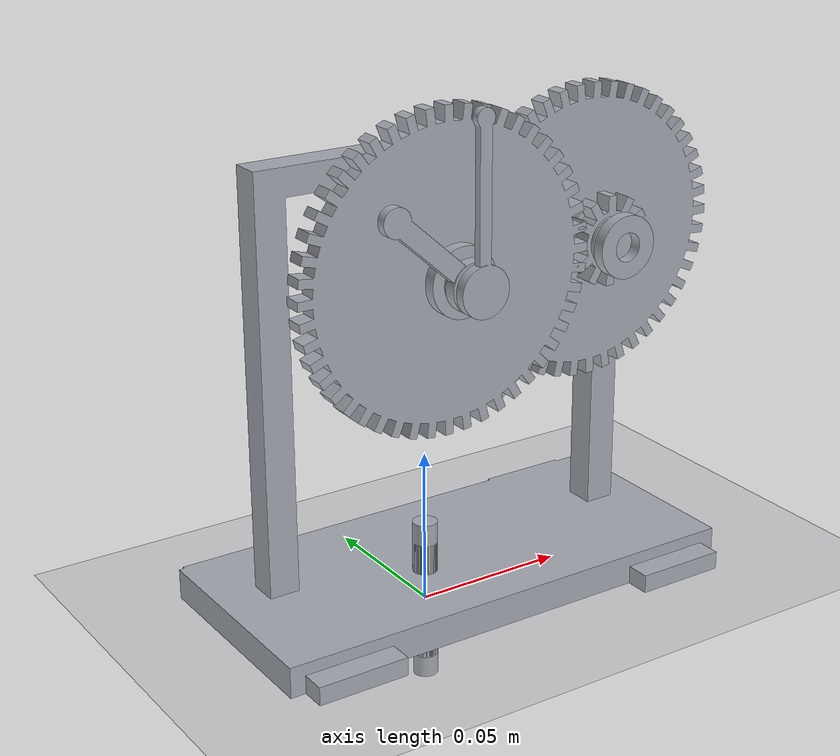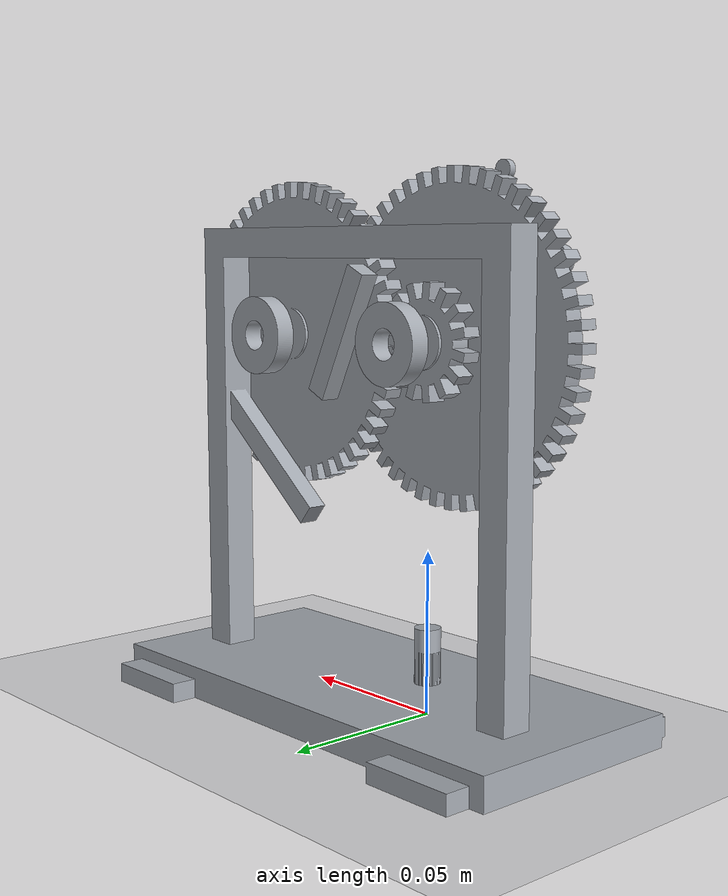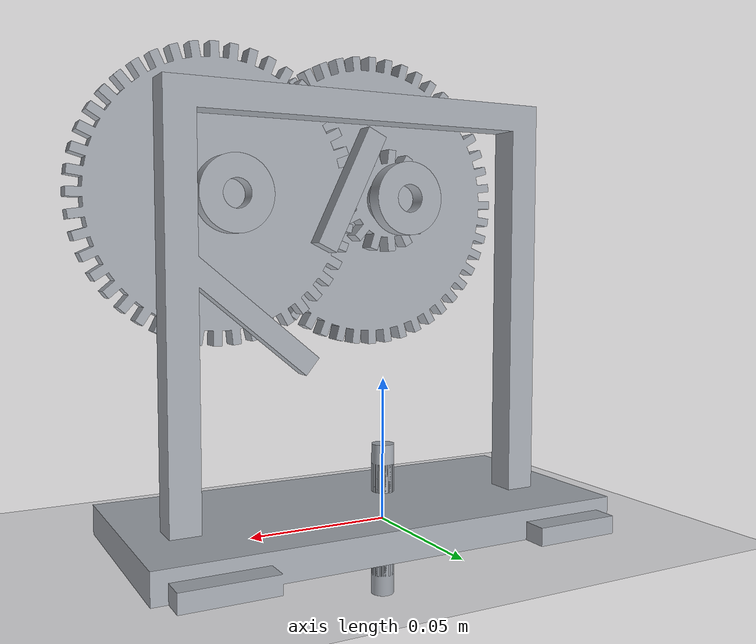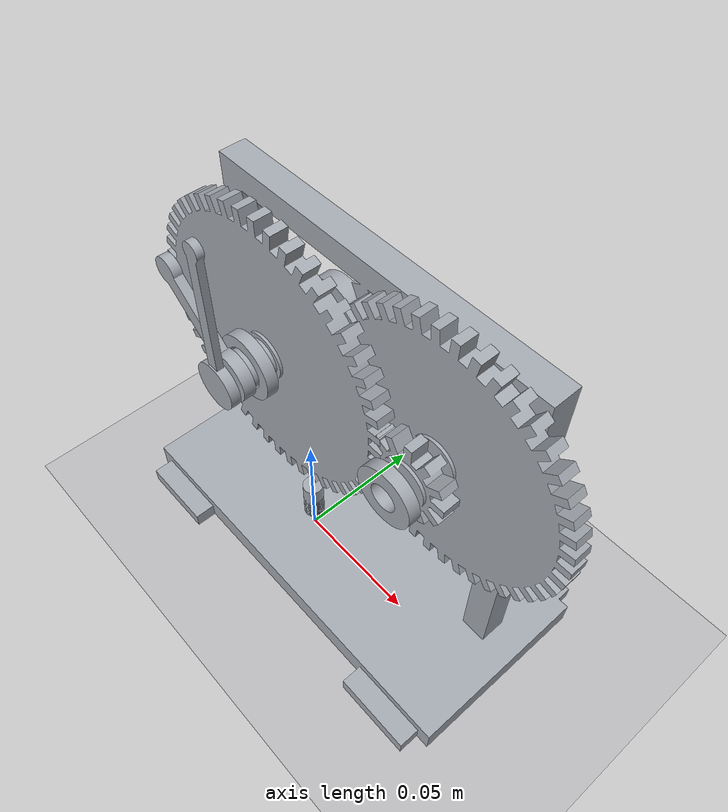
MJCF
<mujoco model="openwork_clock_12to1">
  <compiler angle="radian" meshdir="meshes" autolimits="true" balanceinertia="true" />
  <option timestep="0.002" gravity="0 0 -9.81" integrator="implicitfast" />
  <size njmax="500" nconmax="200" />
  <default>
    <joint damping="0.02" armature="0.00002" />
    <geom contype="1" conaffinity="1" friction="0.5 0.02 0.002" density="780" rgba="0.65 0.67 0.70 1" />
  </default>
  <asset>
    <mesh name="base_frame_mesh" file="base_frame.stl" scale="0.001 0.001 0.001" />
    <mesh name="minute_shaft_mesh" file="minute_shaft.stl" scale="0.001 0.001 0.001" />
    <mesh name="minute_pinion_15t_mesh" file="minute_pinion_15t.stl" scale="0.001 0.001 0.001" />
    <mesh name="minute_hand_mesh" file="minute_hand.stl" scale="0.001 0.001 0.001" />
    <mesh name="intermediate_shaft_mesh" file="intermediate_shaft.stl" scale="0.001 0.001 0.001" />
    <mesh name="intermediate_gear_45t_mesh" file="intermediate_gear_45t.stl" scale="0.001 0.001 0.001" />
    <mesh name="intermediate_pinion_12t_mesh" file="intermediate_pinion_12t.stl" scale="0.001 0.001 0.001" />
    <mesh name="hour_sleeve_mesh" file="hour_sleeve.stl" scale="0.001 0.001 0.001" />
    <mesh name="hour_gear_48t_mesh" file="hour_gear_48t.stl" scale="0.001 0.001 0.001" />
    <mesh name="hour_hand_mesh" file="hour_hand.stl" scale="0.001 0.001 0.001" />
    <material name="frame_mat" rgba="0.18 0.22 0.28 1" />
    <material name="minute_mat" rgba="0.15 0.48 0.88 1" />
    <material name="intermediate_mat" rgba="0.88 0.52 0.12 1" />
    <material name="hour_mat" rgba="0.82 0.18 0.18 1" />
  </asset>
  <worldbody>
    <light pos="0 -0.5 0.5" dir="0 1 -0.4" diffuse="0.9 0.9 0.9" />
    <geom name="ground" type="plane" size="0.5 0.5 0.01" material="frame_mat" contype="1" conaffinity="1" />
    <body name="base_frame">
      <geom name="base_frame_geom" type="mesh" mesh="base_frame_mesh" material="frame_mat" contype="1" conaffinity="1" />
    </body>
    <body name="minute_shaft" pos="0 0 0.112">
      <joint name="minute_input_hinge" type="hinge" pos="0 0 0" axis="0 1 0" />
      <geom name="minute_shaft_geom" type="mesh" mesh="minute_shaft_mesh" pos="0 0 -0.112" material="minute_mat" contype="0" conaffinity="0" />
      <geom name="minute_pinion_15t" type="mesh" mesh="minute_pinion_15t_mesh" pos="0 0 -0.112" material="minute_mat" contype="0" conaffinity="0" />
      <body name="minute_hand">
        <geom name="minute_hand_geom" type="mesh" mesh="minute_hand_mesh" pos="0 0 -0.112" material="minute_mat" contype="0" conaffinity="0" />
      </body>
    </body>
    <body name="intermediate_shaft" pos="0.060 0 0.112">
      <joint name="intermediate_hinge" type="hinge" pos="0 0 0" axis="0 1 0" />
      <geom name="intermediate_shaft_geom" type="mesh" mesh="intermediate_shaft_mesh" pos="-0.060 0 -0.112" material="intermediate_mat" contype="0" conaffinity="0" />
      <geom name="intermediate_gear_45t" type="mesh" mesh="intermediate_gear_45t_mesh" pos="-0.060 0 -0.112" material="intermediate_mat" contype="0" conaffinity="0" />
      <geom name="intermediate_pinion_12t" type="mesh" mesh="intermediate_pinion_12t_mesh" pos="-0.060 0 -0.112" material="intermediate_mat" contype="0" conaffinity="0" />
    </body>
    <body name="hour_sleeve" pos="0 0 0.112">
      <joint name="hour_output_hinge" type="hinge" pos="0 0 0" axis="0 1 0" />
      <geom name="hour_sleeve_geom" type="mesh" mesh="hour_sleeve_mesh" pos="0 0 -0.112" material="hour_mat" contype="0" conaffinity="0" />
      <geom name="hour_gear_48t" type="mesh" mesh="hour_gear_48t_mesh" pos="0 0 -0.112" material="hour_mat" contype="0" conaffinity="0" />
      <body name="hour_hand">
        <geom name="hour_hand_geom" type="mesh" mesh="hour_hand_mesh" pos="0 0 -0.112" material="hour_mat" contype="0" conaffinity="0" />
      </body>
    </body>
  </worldbody>
  <equality>
    <joint name="stage_1_ideal_mesh" joint1="intermediate_hinge" joint2="minute_input_hinge" polycoef="0 -0.3333333333333333 0 0 0" solref="0.001 1" />
    <joint name="stage_2_ideal_mesh" joint1="hour_output_hinge" joint2="intermediate_hinge" polycoef="0 -0.25 0 0 0" solref="0.001 1" />
  </equality>
  <actuator>
    <velocity name="minute_input_motor" joint="minute_input_hinge" kv="20" ctrlrange="-4 4" />
  </actuator>
</mujoco>
